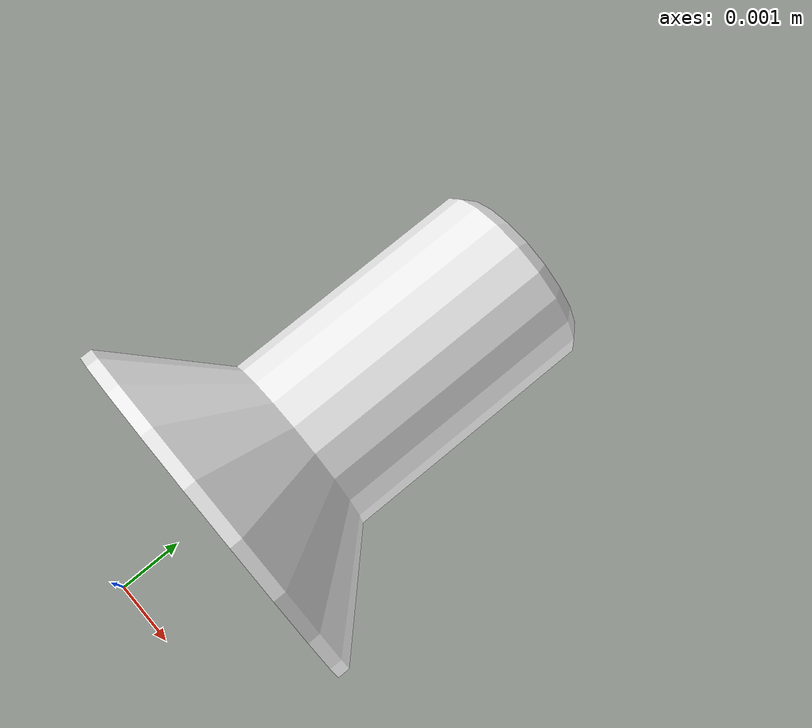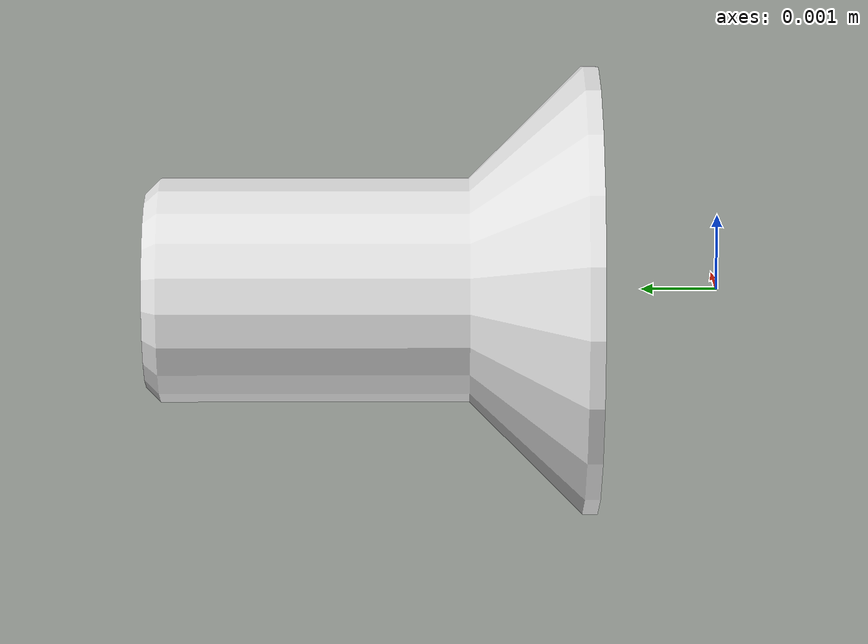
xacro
<?xml version="1.0"?>
<robot name="ax_11_screw2_coverplate_motor" xmlns:xacro="http://www.ros.org/wiki/xacro">

  <!-- Included URDF/XACRO Files -->
  <xacro:include filename="$(find rockin_gazebo)/ros/urdf/model_template.urdf.xacro" />
  <xacro:include filename="$(find rockin_gazebo)/ros/urdf/common.urdf.xacro" />
  <!-- reference frame-->
  <link name="${origin}"/>

  <xacro:macro name="ax_11_screw2_coverplate_motor" params="name">
    <!-- objects -->
    <model_template object_model_path="${ax_11_screw2_coverplate_motor}" mass_of_object="${ax_11_screw2_coverplate_motor_mass}" com_of_object="${com_ax_11_screw2_coverplate_motor}"
      type_of_object="floating"
      link_name="${name}" parent="${origin}"
      trans_x="0" trans_y="0" trans_z="0"
      rot_x="0" rot_y="0" rot_z="0"/>

  </xacro:macro>
  <xacro:ax_11_screw2_coverplate_motor name="ax_11_screw2_coverplate_motor" />
</robot>

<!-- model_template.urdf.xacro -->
<robot name="model_template"
      xmlns:xi="http://www.w3.org/2001/XInclude"
      xmlns:gazebo="http://playerstage.sourceforge.net/gazebo/xmlschema/#gz"
      xmlns:model="http://playerstage.sourceforge.net/gazebo/xmlschema/#model"
      xmlns:sensor="http://playerstage.sourceforge.net/gazebo/xmlschema/#sensor"
      xmlns:body="http://playerstage.sourceforge.net/gazebo/xmlschema/#body"
      xmlns:geom="http://playerstage.sourceforge.net/gazebo/xmlschema/#geom"
      xmlns:joint="http://playerstage.sourceforge.net/gazebo/xmlschema/#joint"
      xmlns:interface="http://playerstage.sourceforge.net/gazebo/xmlschema/#interface"
      xmlns:rendering="http://playerstage.sourceforge.net/gazebo/xmlschema/#rendering"
      xmlns:renderable="http://playerstage.sourceforge.net/gazebo/xmlschema/#renderable"
      xmlns:controller="http://playerstage.sourceforge.net/gazebo/xmlschema/#controller"
      xmlns:physics="http://playerstage.sourceforge.net/gazebo/xmlschema/#physics"
      xmlns:xacro="http://www.ros.org/wiki/xacro">

  <xacro:macro name="model_template" params="object_model_path mass_of_object com_of_object type_of_object
    link_name parent trans_x trans_y trans_z rot_x rot_y rot_z">
          <link name="${link_name}">
          <inertial>
            <mass value="${mass_of_object}" />
            <origin xyz="${com_of_object}" />
            <inertia  ixx="1.0" ixy="0.0"  ixz="0.0"  iyy="1.0"  iyz="0.0"  izz="1.0" />
          </inertial>
          <visual>
            <!-- visual origin is defined w.r.t. link local coordinate system -->
            <origin xyz="0 0 0" rpy="0 0 0" />
            <geometry>
              <mesh filename="${object_model_path}" scale="0.001 0.001 0.001"/>
            </geometry>
          </visual>
          <collision>
            <!-- collision origin is defined w.r.t. link local coordinate system -->
            <origin xyz="0 0 0" rpy="0 0 0" />
            <geometry>
              <mesh filename="${object_model_path}" scale="0.001 0.001 0.001"/>
            </geometry>
          </collision>
          </link>

          <joint name="${link_name}_joint" type="${type_of_object}">
              <parent link="${parent}"/>
              <child link="${link_name}"/>
              <origin xyz="${trans_x} ${trans_y} ${trans_z}" rpy="${rot_x} ${rot_y} ${rot_z}"/>
                <limit effort="100" velocity="100"/>
                <joint_properties damping="0.0" friction="0.0"/>
          </joint>

          <gazebo reference="${link_name}">
              <maxContacts>20</maxContacts>
              <material>Gazebo/White</material>
              <selfCollide>true</selfCollide>
          </gazebo>
  </xacro:macro>
</robot>

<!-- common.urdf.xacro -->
<robot name="common" xmlns:xacro="http://www.ros.org/wiki/xacro">
 <!-- PROPERTY LIST -->
  <!--All units in m-kg-s-radians unit system -->
  <property name="M_PI" value="3.1415926535897931" />
  <property name="M_PI_2" value="1.570796327" />

  <!-- dimesions of objects -->
  <property name="walls_width" value="0.04" />
  <property name="wall_120_len" value="1.2" />
  <property name="wall_80_len" value="0.8" />
  <property name="wall_54_len" value="0.54" />
  <property name="platform_len" value="0.8" />
  <property name="platform_width" value="0.5" />
  <property name="platform_height" value="0.099" />
  <property name="shelf_length" value="0.88" />
  <property name="conveyor_belt_length" value="1.12" />
  <property name="conveyor_belt_height" value="0.11" />
  <property name="quality_control_camera_width" value="0.250" />
  <property name="exit_ramp_breadth" value="0.125" />
  <property name="entrance_width" value="1.04" />
  <property name="rack_width" value="0.2" />
  <property name="em_01_aid_tray_width" value="0.085" />
  <property name="ax_06b_cover_plate_length" value="0.049" />
  <property name="ax_06b_cover_plate_breadth" value="0.045" />
  <property name="ax_06b_cover_plate_width" value="0.003" />

  <property name="ax_03_axis_diameter" value="0.027" />
  <property name="ax_09_motor_with_gearbox_diameter" value="0.042" />

  <!-- reference frame name -->
  <property name="origin" value="world" />

  <!--path to models -->
  <property name="wall_54" value="package://rockin_gazebo/ros/models/arena/wall_540x300x40.dae" />
  <property name="wall_80" value="package://rockin_gazebo/ros/models/arena/wall_800x300x40.dae" />
  <property name="wall_120" value="package://rockin_gazebo/ros/models/arena/wall_1200x300x40.dae" />
  <property name="platform" value="package://rockin_gazebo/ros/models/arena/platform_800x500x99.dae" />
  <property name="rack" value="package://rockin_gazebo/ros/models/arena/aid_tray_rack.dae" />
  <property name="shelf" value="package://rockin_gazebo/ros/models/arena/shelf.dae" />
  <property name="exit_ramp" value="package://rockin_gazebo/ros/models/devices/exit_ramp.dae" />
  <property name="conveyor_belt" value="package://rockin_gazebo/ros/models/devices/conveyor_belt.dae" />
  <property name="force_fitting_machine" value="package://rockin_gazebo/ros/models/devices/force_fitting_machine.dae" />
  <property name="drill_machine" value="package://rockin_gazebo/ros/models/devices/drilling_machine_wit_aid.dae" />
  <property name="quality_control_camera" value="package://rockin_gazebo/ros/models/devices/quality_control_camera_with_mount.dae" />

  <property name="ax_01b_bearing_box" value="package://rockin_gazebo/ros/models/objects/AX-01b_bearing_box.dae" />
  <property name="ax_01_bearing_box" value="package://rockin_gazebo/ros/models/objects/AX-01_bearing_box.dae" />
  <property name="ax_02_bearing" value="package://rockin_gazebo/ros/models/objects/AX-02_bearing.dae" />
  <property name="ax_03_axis" value="package://rockin_gazebo/ros/models/objects/AX-03_axis.dae" />
  <property name="ax_04_shaft_nut" value="package://rockin_gazebo/ros/models/objects/AX-04_shaft_nut.dae" />
  <property name="ax_05_distance_tube" value="package://rockin_gazebo/ros/models/objects/AX-05_distance_tube.dae" />
  <property name="ax_06b_cover_plate_no_hole" value="package://rockin_gazebo/ros/models/objects/AX-06b_cover_plate_no_hole.dae" />
  <property name="ax_06_cover_plate_defect" value="package://rockin_gazebo/ros/models/objects/AX-06_cover_plate_defect.dae" />
  <property name="ax_07_cover_plate_machined" value="package://rockin_gazebo/ros/models/objects/AX-07_cover_plate_machined.dae" />
  <property name="ax_09_motor_with_gearbox" value="package://rockin_gazebo/ros/models/objects/AX-09_motor_with_gearbox.dae" />
  <property name="ax_10_screw1_coverplate_motor" value="package://rockin_gazebo/ros/models/objects/AX-10_screw1_coverplate_motor.dae" />
  <property name="ax_11_screw2_coverplate_motor" value="package://rockin_gazebo/ros/models/objects/AX-11_screw2_coverplate_motor.dae" />
  <property name="em_01_aid_tray" value="package://rockin_gazebo/ros/models/objects/EM-01_aid_tray.dae" />
  <property name="em_01b_aid_tray_inlay" value="package://rockin_gazebo/ros/models/objects/EM-01b_aid_tray_inlay.dae" />
  <property name="em_02_coverplates_box" value="package://rockin_gazebo/ros/models/objects/EM-02_coverplates_box.dae" />
  <property name="er_02_container" value="package://rockin_gazebo/ros/models/objects/ER-02_container.dae" />

  <!-- weights(Kg) -->
  <property name="wall_120_mass" value="5.0" />
  <property name="wall_80_mass" value="3.5" />
  <property name="wall_54_mass" value="3.0" />
  <property name="platform_mass" value="11.5" />
  <property name="shelf_mass" value="21.0" />
  <property name="aid_tray_rack_mass" value="3.0" />
  <property name="conveyor_belt_mass" value="20.0" />
  <property name="quality_control_camera_mass" value="1.0"/>
  <property name="exit_ramp_mass" value="0.523"/>
  <property name="drill_machine_mass" value="15.5" />
  <property name="force_fitting_machine_mass" value="6.0" />

  <property name="ax_01b_bearing_box_mass" value="0.054" />
  <property name="ax_01_bearing_box_mass" value="0.101" />
  <property name="ax_02_bearing_mass" value="0.044" />
  <property name="ax_03_axis_mass" value="0.043" />
  <property name="ax_04_shaft_nut_mass" value="0.014" />
  <property name="ax_05_distance_tube_mass" value="0.004" />
  <property name="ax_06b_cover_plate_no_hole_mass" value="0.015" />
  <property name="ax_06_cover_plate_defect_mass" value="0.015" />
  <property name="ax_07_cover_plate_machined_mass" value="0.015" />
  <property name="ax_09_motor_with_gearbox_mass" value="0.022" />
  <property name="ax_10_screw1_coverplate_motor_mass" value="1.0" />
  <property name="ax_11_screw2_coverplate_motor_mass" value="1.0" />
  <property name="em_01_aid_tray_mass" value="0.048" />
  <property name="em_01b_aid_tray_inlay_mass" value="0.005" />
  <property name="em_02_coverplates_box_mass" value="0.075" />
  <property name="er_02_container_mass" value="0.088" />

  <!-- center of masses -->
  <property name="com_wall_54" value="-0.020 0.270 0.150"/>
  <property name="com_wall_80" value="-0.020 0.400 0.150"/>
  <property name="com_wall_120" value="-0.020 0.600 0.150"/>
  <property name="com_shelf" value="0.225 0.400 0.222"/>
  <property name="com_platform" value="0.250 0.401 0.064"/>
  <property name="com_rack" value="0.0354 0.1 0.1783"/>
  <property name="com_exit_ramp" value="-0.00011 0.034 0.0272"/>
  <property name="com_conveyor_belt" value="-0.0234 0.608 0.100"/>
  <property name="com_quality_control_camera" value="0.026 0.124 0.275"/>
  <property name="com_force_fitting" value="0.079 -0.0016 0.166"/>
  <property name="com_drill_machine" value="0.036 -0.00536 0.307"/>

  <property name="com_ax_01b_bearing_box" value="0.0185 0.025 0.0115" />
  <property name="com_ax_01_bearing_box" value="0.021 0.025 0.013" />
  <property name="com_ax_02_bearing" value="0.0065 0 0" />
  <property name="com_ax_03_axis" value="0.0404 0 0" />
  <property name="com_ax_04_shaft_nut" value="-0.0036 0 0" />
  <property name="com_ax_05_distance_tube" value="0 0 0.005" />
  <property name="com_ax_06b_cover_plate_no_hole" value="0.022 0.024 0.0015" />
  <property name="com_ax_06_cover_plate_defect" value="0.022 0.024 0.0015" />
  <property name="com_ax_07_cover_plate_machined" value="0.022 0.024 0.0015" />
  <property name="com_ax_09_motor_with_gearbox" value="0.0363 0.00056 0" />
  <property name="com_ax_10_screw1_coverplate_motor" value="0.004 0 0" />
  <property name="com_ax_11_screw2_coverplate_motor" value="0 0.00354 0" />
  <property name="com_em_01_aid_tray" value="0.031 0.058 0.011" />
  <property name="com_em_01b_aid_tray_inlay" value="0 0.0068 0.003" />
  <property name="com_em_02_coverplates_box" value="0 0.011 0.0135" />
  <property name="com_er_02_container" value="-0.088 0.0685 0.029" />
</robot>
